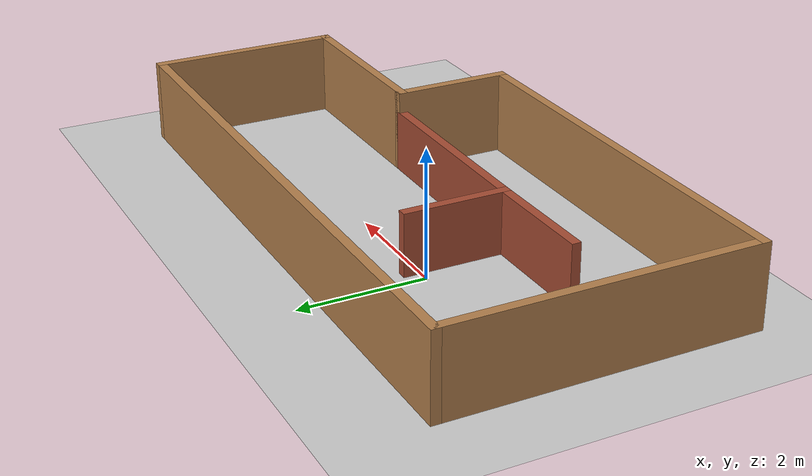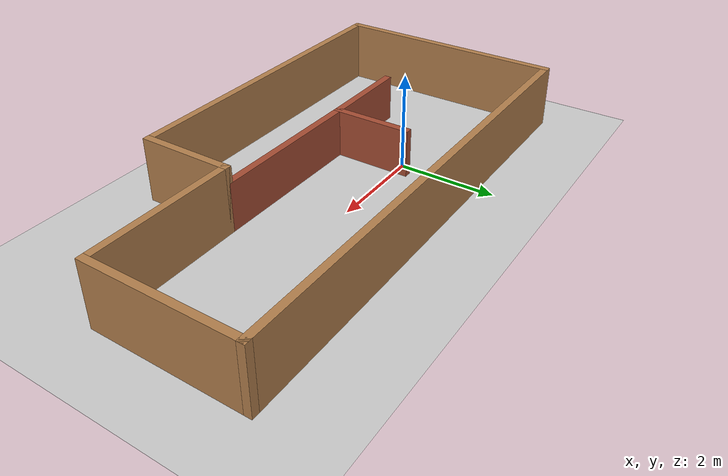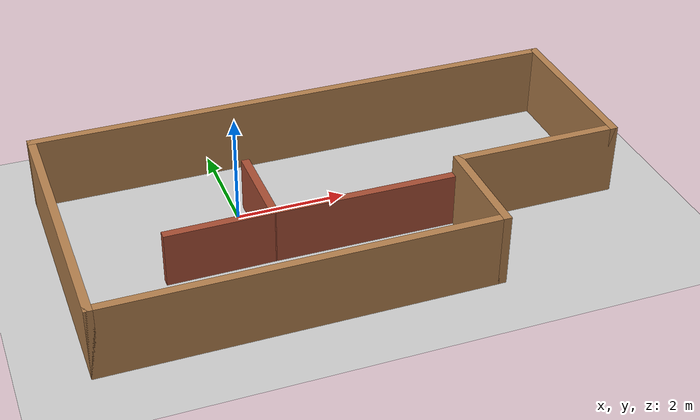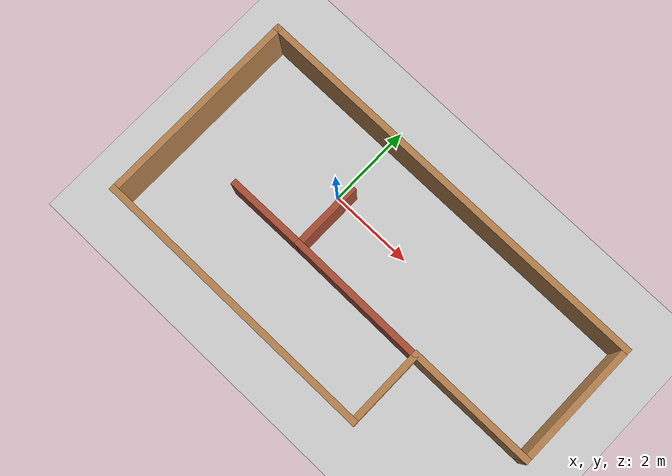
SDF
<sdf version="1.7">
 <world name="default">
  <light name="sun" type="directional">
   <pose>0 0 10 0 -0 0</pose>
   <diffuse>0.8 0.8 0.8 1</diffuse>
   <specular>0.2 0.2 0.2 1</specular>
   <attenuation>
    <range>1000</range>
    <constant>0.9</constant>
    <linear>0.01</linear>
    <quadratic>0.001</quadratic>
   </attenuation>
   <direction>-0.5 0.1 -0.9</direction>
   <spot><inner_angle>0</inner_angle><outer_angle>0</outer_angle><falloff>0</falloff></spot>
  </light>
  <model name="ground_plane">
   <static>1</static>
   <link name="link">
    <collision name="collision">
     <geometry><plane><normal>0 0 1</normal><size>100 100</size></plane></geometry>
     <surface>
      <contact><collide_bitmask>65535</collide_bitmask></contact>
      <friction><ode><mu>100</mu><mu2>50</mu2></ode></friction>
     </surface>
    </collision>
    <visual name="visual">
     <cast_shadows>0</cast_shadows>
     <geometry><plane><normal>0 0 1</normal><size>100 100</size></plane></geometry>
     <material>
      <script><uri>file://media/materials/scripts/gazebo.material</uri><name>Gazebo/Grey</name></script>
     </material>
    </visual>
   </link>
  </model>
  <gravity>0 0 -9.8</gravity>
  <magnetic_field>6e-06 2.3e-05 -4.2e-05</magnetic_field>
  <atmosphere type="adiabatic"/>
  <physics type="ode">
   <max_step_size>0.001</max_step_size>
   <real_time_factor>1</real_time_factor>
   <real_time_update_rate>1000</real_time_update_rate>
  </physics>
  <scene><ambient>0.4 0.4 0.4 1</ambient><background>0.7 0.7 0.7 1</background><shadows>1</shadows></scene>
  <spherical_coordinates>
   <surface_model>EARTH_WGS84</surface_model>
   <latitude_deg>0</latitude_deg>
   <longitude_deg>0</longitude_deg>
   <elevation>0</elevation>
   <heading_deg>0</heading_deg>
  </spherical_coordinates>
  <model name="world">
   <pose>1.669 -0.822 0 0 -0 0</pose>
   <link name="Wall_18">
    <collision name="Wall_18_Collision">
     <geometry><box><size>10 0.15 1.33</size></box></geometry>
     <pose>0 0 0.665 0 -0 0</pose>
    </collision>
    <visual name="Wall_18_Visual">
     <pose>0 0 0.665 0 -0 0</pose>
     <geometry><box><size>10 0.15 1.33</size></box></geometry>
     <material>
      <script><uri>file://media/materials/scripts/gazebo.material</uri><name>Gazebo/Wood</name></script>
      <ambient>1 1 1 1</ambient>
     </material>
     <meta><layer>0</layer></meta>
    </visual>
    <pose>0 2.415 0 0 -0 3.14159</pose>
   </link>
   <link name="Wall_19">
    <collision name="Wall_19_Collision">
     <geometry><box><size>4.98 0.15 1.33</size></box></geometry>
     <pose>0 0 0.665 0 -0 0</pose>
    </collision>
    <visual name="Wall_19_Visual">
     <pose>0 0 0.665 0 -0 0</pose>
     <geometry><box><size>4.98 0.15 1.33</size></box></geometry>
     <material>
      <script><uri>file://media/materials/scripts/gazebo.material</uri><name>Gazebo/Wood</name></script>
      <ambient>1 1 1 1</ambient>
     </material>
     <meta><layer>0</layer></meta>
    </visual>
    <pose>-4.925 -0 0 0 -0 -1.5708</pose>
   </link>
   <link name="Wall_21">
    <collision name="Wall_21_Collision">
     <geometry><box><size>7 0.15 1.33</size></box></geometry>
     <pose>0 0 0.665 0 -0 0</pose>
    </collision>
    <visual name="Wall_21_Visual">
     <pose>0 0 0.665 0 -0 0</pose>
     <geometry><box><size>7 0.15 1.33</size></box></geometry>
     <material>
      <script><uri>file://media/materials/scripts/gazebo.material</uri><name>Gazebo/Wood</name></script>
      <ambient>1 1 1 1</ambient>
     </material>
     <meta><layer>0</layer></meta>
    </visual>
    <pose>-1.5 -2.415 0 0 -0 0</pose>
   </link>
   <link name="Wall_22">
    <collision name="Wall_22_Collision">
     <geometry><box><size>1.98 0.15 1.33</size></box></geometry>
     <pose>0 0 0.665 0 -0 0</pose>
    </collision>
    <visual name="Wall_22_Visual">
     <pose>0 0 0.665 0 -0 0</pose>
     <geometry><box><size>1.98 0.15 1.33</size></box></geometry>
     <material>
      <script><uri>file://media/materials/scripts/gazebo.material</uri><name>Gazebo/Wood</name></script>
      <ambient>1 1 1 1</ambient>
     </material>
     <meta><layer>0</layer></meta>
    </visual>
    <pose>1.925 -1.5 0 0 -0 1.5708</pose>
   </link>
   <link name="Wall_24">
    <collision name="Wall_24_Collision">
     <geometry><box><size>3.15 0.15 1.33</size></box></geometry>
     <pose>0 0 0.665 0 -0 0</pose>
    </collision>
    <visual name="Wall_24_Visual">
     <pose>0 0 0.665 0 -0 0</pose>
     <geometry><box><size>3.15 0.15 1.33</size></box></geometry>
     <material>
      <script><uri>file://media/materials/scripts/gazebo.material</uri><name>Gazebo/Wood</name></script>
      <ambient>1 1 1 1</ambient>
     </material>
     <meta><layer>0</layer></meta>
    </visual>
    <pose>3.425 -0.585 0 0 -0 0</pose>
   </link>
   <link name="Wall_26">
    <collision name="Wall_26_Collision">
     <geometry><box><size>3.15 0.15 1.33</size></box></geometry>
     <pose>0 0 0.665 0 -0 0</pose>
    </collision>
    <visual name="Wall_26_Visual">
     <pose>0 0 0.665 0 -0 0</pose>
     <geometry><box><size>3.15 0.15 1.33</size></box></geometry>
     <material>
      <script><uri>file://media/materials/scripts/gazebo.material</uri><name>Gazebo/Wood</name></script>
      <ambient>1 1 1 1</ambient>
     </material>
     <meta><layer>0</layer></meta>
    </visual>
    <pose>4.925 0.915 0 0 -0 1.5708</pose>
   </link>
   <link name="Wall_29">
    <collision name="Wall_29_Collision">
     <geometry><box><size>1.72713 0.15 1</size></box></geometry>
     <pose>0 0 0.5 0 -0 0</pose>
    </collision>
    <visual name="Wall_29_Visual">
     <pose>0 0 0.5 0 -0 0</pose>
     <geometry><box><size>1.72713 0.15 1</size></box></geometry>
     <material>
      <script><uri>file://media/materials/scripts/gazebo.material</uri><name>Gazebo/Bricks</name></script>
      <ambient>1 1 1 1</ambient>
     </material>
     <meta><layer>0</layer></meta>
    </visual>
    <pose>-1.425 0.2265 0 0 -0 1.5708</pose>
   </link>
   <link name="Wall_31">
    <collision name="Wall_31_Collision">
     <geometry><box><size>1.99981 0.15 1</size></box></geometry>
     <pose>0 0 0.5 0 -0 0</pose>
    </collision>
    <visual name="Wall_31_Visual">
     <pose>0 0 0.5 0 -0 0</pose>
     <geometry><box><size>1.99981 0.15 1</size></box></geometry>
     <material>
      <script><uri>file://media/materials/scripts/gazebo.material</uri><name>Gazebo/Bricks</name></script>
      <ambient>1 1 1 1</ambient>
     </material>
     <meta><layer>0</layer></meta>
    </visual>
    <pose>-2.35 -0.5675 0 0 -0 -3.13565</pose>
   </link>
   <link name="Wall_33">
    <collision name="Wall_33_Collision">
     <geometry><box><size>3.50002 0.15 1</size></box></geometry>
     <pose>0 0 0.5 0 -0 0</pose>
    </collision>
    <visual name="Wall_33_Visual">
     <pose>0 0 0.5 0 -0 0</pose>
     <geometry><box><size>3.50002 0.15 1</size></box></geometry>
     <material>
      <script><uri>file://media/materials/scripts/gazebo.material</uri><name>Gazebo/Bricks</name></script>
      <ambient>1 1 1 1</ambient>
     </material>
     <meta><layer>0</layer></meta>
    </visual>
    <pose>0.25 -0.5735 0 0 -0 -0.006866</pose>
   </link>
   <static>1</static>
  </model>
 </world>
</sdf>
